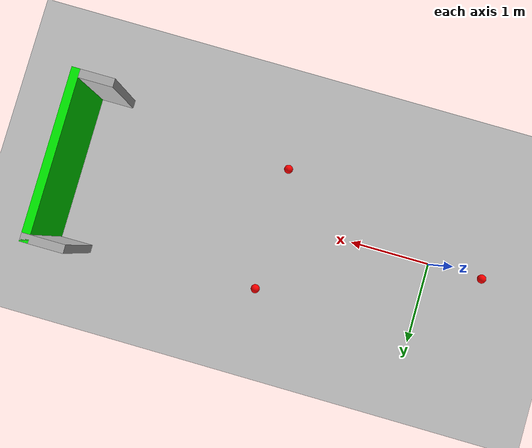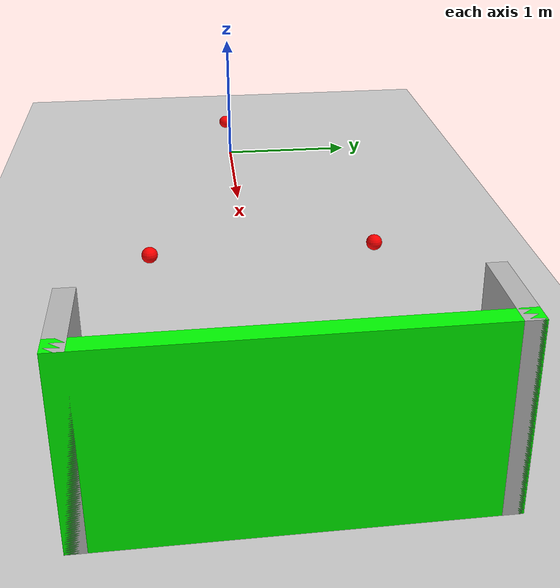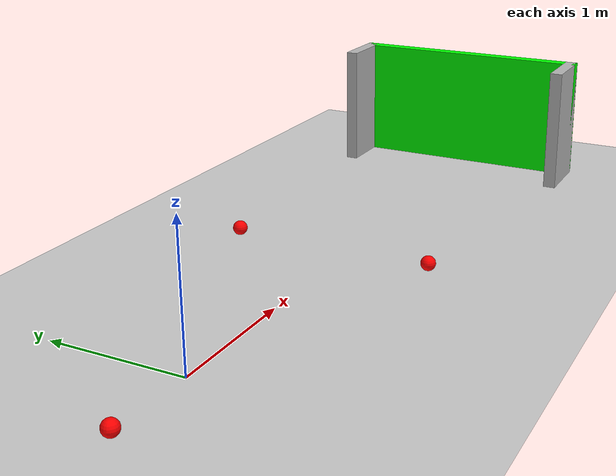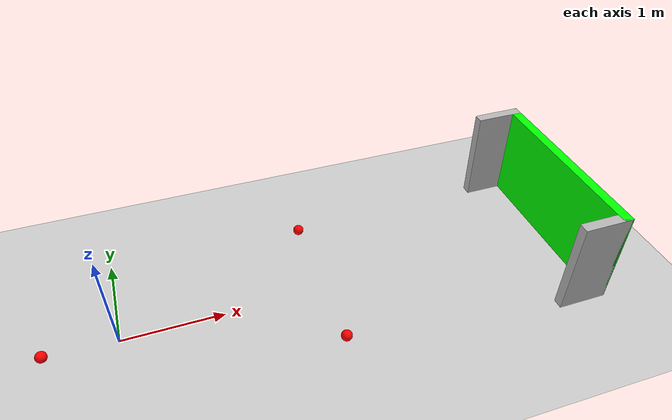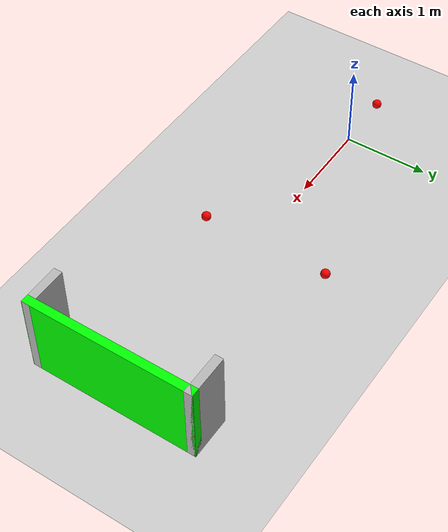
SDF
<sdf version="1.7">
 <world name="default">
  <light name="sun" type="directional">
   <pose>0 0 10 0 -0 0</pose>
   <diffuse>0.8 0.8 0.8 1</diffuse>
   <specular>0.2 0.2 0.2 1</specular>
   <attenuation>
    <range>1000</range>
    <constant>0.9</constant>
    <linear>0.01</linear>
    <quadratic>0.001</quadratic>
   </attenuation>
   <direction>-0.5 0.1 -0.9</direction>
   <spot><inner_angle>0</inner_angle><outer_angle>0</outer_angle><falloff>0</falloff></spot>
  </light>
  <model name="ground_plane">
   <static>1</static>
   <link name="link">
    <collision name="collision">
     <geometry><plane><normal>0 0 1</normal><size>100 100</size></plane></geometry>
     <surface>
      <contact><collide_bitmask>65535</collide_bitmask></contact>
      <friction><ode><mu>100</mu><mu2>50</mu2></ode></friction>
     </surface>
    </collision>
    <visual name="visual">
     <cast_shadows>0</cast_shadows>
     <geometry><plane><normal>0 0 1</normal><size>100 100</size></plane></geometry>
     <material>
      <script><uri>file://media/materials/scripts/gazebo.material</uri><name>Gazebo/Grey</name></script>
     </material>
    </visual>
   </link>
  </model>
  <gravity>0 0 -9.8</gravity>
  <magnetic_field>6e-06 2.3e-05 -4.2e-05</magnetic_field>
  <atmosphere type="adiabatic"/>
  <physics type="ode">
   <max_step_size>0.001</max_step_size>
   <real_time_factor>1</real_time_factor>
   <real_time_update_rate>1000</real_time_update_rate>
  </physics>
  <scene><ambient>0.4 0.4 0.4 1</ambient><background>0.7 0.7 0.7 1</background><shadows>1</shadows></scene>
  <audio><device>default</device></audio>
  <spherical_coordinates>
   <surface_model>EARTH_WGS84</surface_model>
   <latitude_deg>0</latitude_deg>
   <longitude_deg>0</longitude_deg>
   <elevation>0</elevation>
   <heading_deg>0</heading_deg>
  </spherical_coordinates>
  <model name="goal">
   <model name="goal">
    <pose>-2e-06 -0 0 0 -0 1.57394</pose>
    <link name="back_wall">
     <pose>0 0 0.5 0 -0 0</pose>
     <inertial>
      <mass>1</mass>
      <inertia><ixx>0.01</ixx><ixy>0</ixy><ixz>0</ixz><iyy>0.01</iyy><iyz>0</iyz><izz>0.01</izz></inertia>
     </inertial>
     <collision name="collision_back_wall">
      <geometry><box><size>2 0.1 1</size></box></geometry>
      <surface><friction><ode><mu>1</mu><mu2>1</mu2></ode></friction></surface>
     </collision>
     <visual name="visual_back_wall">
      <geometry><box><size>2 0.1 1</size></box></geometry>
      <material><ambient>0 1 0 1</ambient><diffuse>0 1 0 1</diffuse><specular>0 1 0 1</specular></material>
     </visual>
    </link>
    <link name="wall_left">
     <pose>-0.95 0.2 0.5 0 -0 0</pose>
     <inertial>
      <mass>0.5</mass>
      <inertia><ixx>0.01</ixx><ixy>0</ixy><ixz>0</ixz><iyy>0.01</iyy><iyz>0</iyz><izz>0.01</izz></inertia>
     </inertial>
     <collision name="collision_wall_left">
      <geometry><box><size>0.1 0.5 1</size></box></geometry>
      <surface><friction><ode><mu>1</mu><mu2>1</mu2></ode></friction></surface>
     </collision>
     <visual name="visual_wall_left"><geometry><box><size>0.1 0.5 1</size></box></geometry></visual>
    </link>
    <link name="wall_right">
     <pose>0.95 0.2 0.5 0 -0 0</pose>
     <inertial>
      <mass>0.5</mass>
      <inertia><ixx>0.01</ixx><ixy>0</ixy><ixz>0</ixz><iyy>0.01</iyy><iyz>0</iyz><izz>0.01</izz></inertia>
     </inertial>
     <collision name="collision_wall_right">
      <geometry><box><size>0.1 0.5 1</size></box></geometry>
      <surface><friction><ode><mu>1</mu><mu2>1</mu2></ode></friction></surface>
     </collision>
     <visual name="visual_wall_right"><geometry><box><size>0.1 0.5 1</size></box></geometry></visual>
    </link>
    <joint name="back_to_wall_left" type="fixed"><parent>back_wall</parent><child>wall_left</child></joint>
    <joint name="back_to_wall_right" type="fixed"><parent>back_wall</parent><child>wall_right</child></joint>
    <static>1</static>
   </model>
   <static>0</static>
   <pose>4.55995 0.031472 0 0 -0 0</pose>
  </model>
  <model name="unit_sphere">
   <link name="link">
    <inertial>
     <mass>2</mass>
     <inertia><ixx>0.00242</ixx><ixy>0</ixy><ixz>0</ixz><iyy>0.00242</iyy><iyz>0</iyz><izz>0.00242</izz></inertia>
    </inertial>
    <visual name="visual">
     <geometry><sphere><radius>0.055</radius></sphere></geometry>
     <material>
      <ambient>1 0 0 1</ambient>
      <diffuse>1 0 0 1</diffuse>
      <specular>0 0 0 1</specular>
      <emissive>0 0 0 1</emissive>
     </material>
     <cast_shadows>0</cast_shadows>
    </visual>
    <collision name="collision">
     <geometry><sphere><radius>0.055</radius></sphere></geometry>
     <surface>
      <friction>
       <ode><mu>5</mu><mu2>5</mu2><fdir1>0 0 0</fdir1><slip1>0.1</slip1><slip2>0.1</slip2></ode>
       <torsional>
        <coefficient>1</coefficient>
        <patch_radius>0</patch_radius>
        <surface_radius>0</surface_radius>
        <use_patch_radius>1</use_patch_radius>
        <ode><slip>0</slip></ode>
       </torsional>
      </friction>
      <bounce><restitution_coefficient>0</restitution_coefficient><threshold>1e+06</threshold></bounce>
      <contact>
       <collide_without_contact>0</collide_without_contact>
       <collide_without_contact_bitmask>1</collide_without_contact_bitmask>
       <collide_bitmask>1</collide_bitmask>
       <ode>
        <soft_cfm>0</soft_cfm>
        <soft_erp>0.2</soft_erp>
        <kp>1e+13</kp>
        <kd>1</kd>
        <max_vel>0.01</max_vel>
        <min_depth>0</min_depth>
       </ode>
       <bullet>
        <split_impulse>1</split_impulse>
        <split_impulse_penetration_threshold>-0.01</split_impulse_penetration_threshold>
        <soft_cfm>0</soft_cfm>
        <soft_erp>0.2</soft_erp>
        <kp>1e+13</kp>
        <kd>1</kd>
       </bullet>
      </contact>
     </surface>
    </collision>
   </link>
   <static>0</static>
   <pose>1.99563 0.884538 0.055 0 -0 0</pose>
  </model>
  <model name="unit_sphere_0">
   <link name="link">
    <inertial>
     <mass>2</mass>
     <inertia><ixx>0.00242</ixx><ixy>0</ixy><ixz>0</ixz><iyy>0.00242</iyy><iyz>0</iyz><izz>0.00242</izz></inertia>
    </inertial>
    <visual name="visual">
     <geometry><sphere><radius>0.055</radius></sphere></geometry>
     <material>
      <ambient>1 0 0 1</ambient>
      <diffuse>1 0 0 1</diffuse>
      <specular>0 0 0 1</specular>
      <emissive>0 0 0 1</emissive>
     </material>
     <cast_shadows>0</cast_shadows>
    </visual>
    <collision name="collision">
     <geometry><sphere><radius>0.055</radius></sphere></geometry>
     <surface>
      <friction>
       <ode><mu>5</mu><mu2>5</mu2><fdir1>0 0 0</fdir1><slip1>0.1</slip1><slip2>0.1</slip2></ode>
       <torsional>
        <coefficient>1</coefficient>
        <patch_radius>0</patch_radius>
        <surface_radius>0</surface_radius>
        <use_patch_radius>1</use_patch_radius>
        <ode><slip>0</slip></ode>
       </torsional>
      </friction>
      <bounce><restitution_coefficient>0</restitution_coefficient><threshold>1e+06</threshold></bounce>
      <contact>
       <collide_without_contact>0</collide_without_contact>
       <collide_without_contact_bitmask>1</collide_without_contact_bitmask>
       <collide_bitmask>1</collide_bitmask>
       <ode>
        <soft_cfm>0</soft_cfm>
        <soft_erp>0.2</soft_erp>
        <kp>1e+13</kp>
        <kd>1</kd>
        <max_vel>0.01</max_vel>
        <min_depth>0</min_depth>
       </ode>
       <bullet>
        <split_impulse>1</split_impulse>
        <split_impulse_penetration_threshold>-0.01</split_impulse_penetration_threshold>
        <soft_cfm>0</soft_cfm>
        <soft_erp>0.2</soft_erp>
        <kp>1e+13</kp>
        <kd>1</kd>
       </bullet>
      </contact>
     </surface>
    </collision>
   </link>
   <static>0</static>
   <pose>2.00709 -0.660925 0.055 0 -0 0</pose>
  </model>
  <model name="unit_sphere_1">
   <link name="link">
    <inertial>
     <mass>2</mass>
     <inertia><ixx>0.00242</ixx><ixy>0</ixy><ixz>0</ixz><iyy>0.00242</iyy><iyz>0</iyz><izz>0.00242</izz></inertia>
    </inertial>
    <visual name="visual">
     <geometry><sphere><radius>0.055</radius></sphere></geometry>
     <material>
      <ambient>1 0 0 1</ambient>
      <diffuse>1 0 0 1</diffuse>
      <specular>0 0 0 1</specular>
      <emissive>0 0 0 1</emissive>
     </material>
     <cast_shadows>0</cast_shadows>
    </visual>
    <collision name="collision">
     <geometry><sphere><radius>0.055</radius></sphere></geometry>
     <surface>
      <friction>
       <ode><mu>5</mu><mu2>5</mu2><fdir1>0 0 0</fdir1><slip1>0.1</slip1><slip2>0.1</slip2></ode>
       <torsional>
        <coefficient>1</coefficient>
        <patch_radius>0</patch_radius>
        <surface_radius>0</surface_radius>
        <use_patch_radius>1</use_patch_radius>
        <ode><slip>0</slip></ode>
       </torsional>
      </friction>
      <bounce><restitution_coefficient>0</restitution_coefficient><threshold>1e+06</threshold></bounce>
      <contact>
       <collide_without_contact>0</collide_without_contact>
       <collide_without_contact_bitmask>1</collide_without_contact_bitmask>
       <collide_bitmask>1</collide_bitmask>
       <ode>
        <soft_cfm>0</soft_cfm>
        <soft_erp>0.2</soft_erp>
        <kp>1e+13</kp>
        <kd>1</kd>
        <max_vel>0.01</max_vel>
        <min_depth>0</min_depth>
       </ode>
       <bullet>
        <split_impulse>1</split_impulse>
        <split_impulse_penetration_threshold>-0.01</split_impulse_penetration_threshold>
        <soft_cfm>0</soft_cfm>
        <soft_erp>0.2</soft_erp>
        <kp>1e+13</kp>
        <kd>1</kd>
       </bullet>
      </contact>
     </surface>
    </collision>
   </link>
   <static>0</static>
   <pose>-0.673154 -0.006563 0.055 0 -0 0</pose>
  </model>
 </world>
</sdf>
